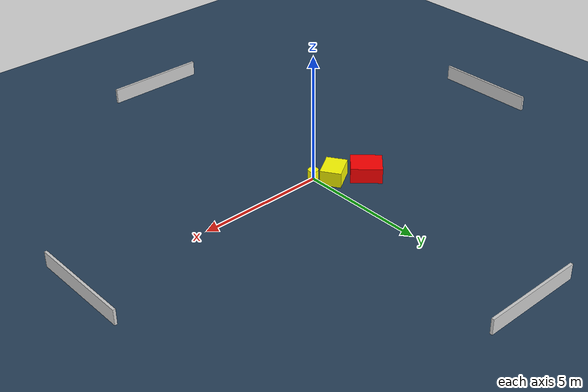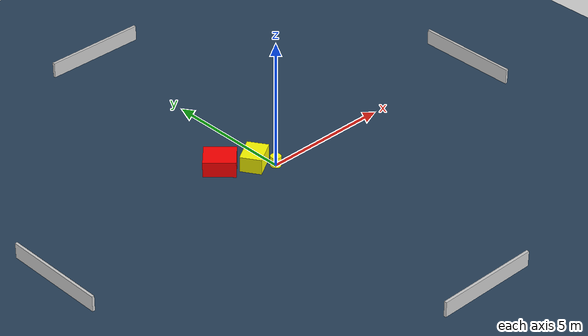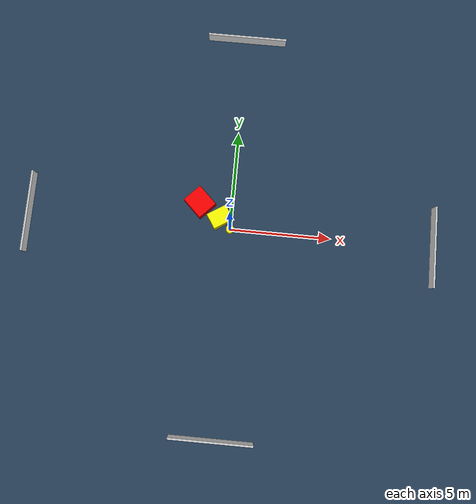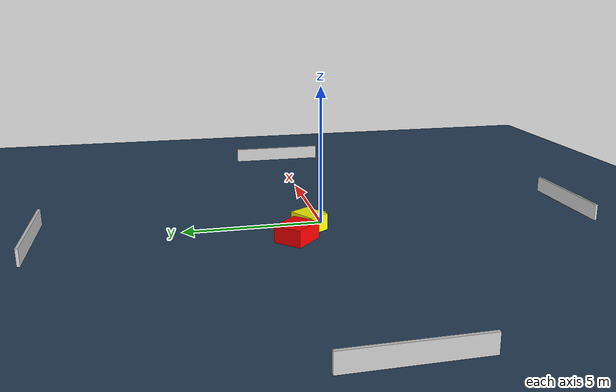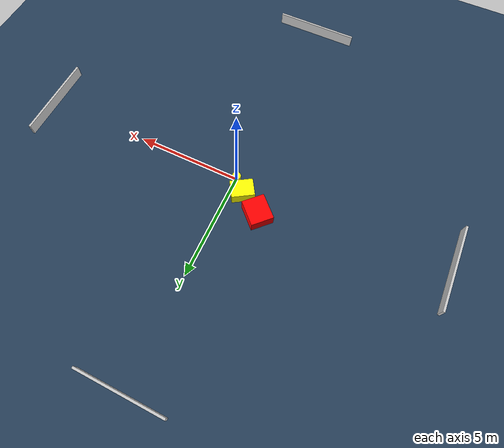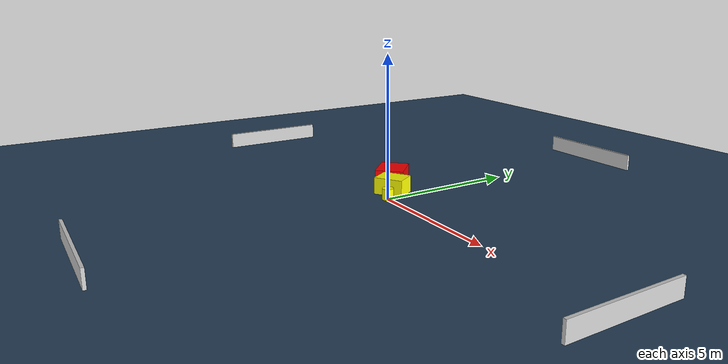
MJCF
<?xml version="1.0" ?>
<mujoco model="generated_environment">
  <option timestep="0.01" integrator="RK4" cone="elliptic"/>
  <default>
    <geom density="1"/>
  </default>
  <asset>
    <texture builtin="gradient" height="3072" name="skybox" rgb1="0.3 0.5 0.7" rgb2="0 0 0" type="skybox" width="512"/>
    <texture builtin="checker" height="300" name="groundplane" rgb1="0.2 0.3 0.4" rgb2="0.1 0.2 0.3" type="2d" width="300"/>
    <material name="groundplane" reflectance="0.2" texrepeat="5 5" texture="groundplane"/>
  </asset>
  <worldbody>
    <light dir="0 0 -1" directional="true" pos="0 0 1.5"/>
    <geom condim="3" friction="0.5 0.005 0.001" material="groundplane" name="floor" pos="0 0 0" size="0 0 0.05" type="plane"/>
    <body name="walls">
      <geom name="wall_1" condim="4" pos="-10.0 0.0 0.3" rgba="0.800000011920929 0.800000011920929 0.800000011920929 1.0" size="0.05 2.0 0.3" type="box"/>
      <geom name="wall_2" condim="4" pos="10.0 0.0 0.3" rgba="0.800000011920929 0.800000011920929 0.800000011920929 1.0" size="0.05 2.0 0.3" type="box"/>
      <geom name="wall_3" condim="4" pos="0.0 -10.0 0.3" rgba="0.800000011920929 0.800000011920929 0.800000011920929 1.0" size="2.0 0.05 0.3" type="box"/>
      <geom name="wall_4" condim="4" pos="0.0 10.0 0.3" rgba="0.800000011920929 0.800000011920929 0.800000011920929 1.0" size="2.0 0.05 0.3" type="box"/>
    </body>
    <body name="robot">
      <joint name="joint_x" type="slide" pos="0 0 0" axis="1 0 0"/>
      <joint name="joint_y" type="slide" pos="0 0 0" axis="0 1 0"/>
      <geom name="robot" type="cylinder" pos="0.0 0.0 0.2" size="0.2 0.2 0.0" mass="5.0" friction="1.0 0.005 0.0001" condim="4" rgba="1.0 1.0 0.0 1.0"/>
    </body>
    <body name="obstacle_1_movable">
      <geom name="obstacle_1_movable" condim="4" pos="-0.5382643660026578 0.5371061504409176 0.3" euler="0 0 122.27539692518664" friction="0.0 0.005 0.001" rgba="1.0 1.0 0.0 1.0" size="0.4044627261504868 0.525244498772264 0.3" type="box" mass="0.1"/>
      <joint type="free"/>
    </body>
    <body name="obstacle_2_static">
      <geom name="obstacle_2_static" condim="4" pos="-1.591314611282373 1.1927499582194458 0.3" euler="0 0 135.93691134879808" friction="0.0 0.005 0.001" rgba="1.0 0.0 0.0 1.0" size="0.5971927055351235 0.5218535636042757 0.3" type="box"/>
    </body>
  </worldbody>
  <actuator>
    <motor name="actuator_x" joint="joint_x" gear="1" ctrlrange="-1 1"/>
    <motor name="actuator_y" joint="joint_y" gear="1" ctrlrange="-1 1"/>
  </actuator>
</mujoco>
